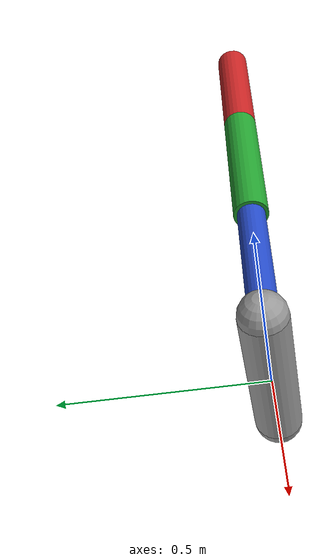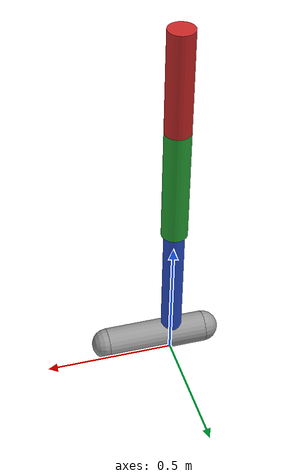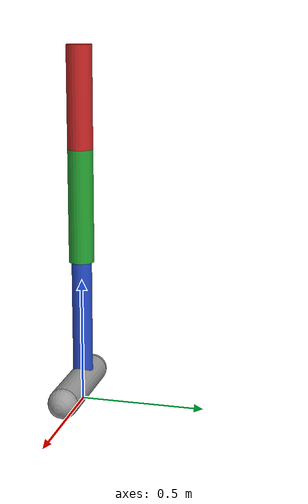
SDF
<sdf version='1.6'>
  <model name='hopper'>
    <link name='mid'>
      <pose frame=''>0 0 0 0 -0 0</pose>
      <inertial>
        <pose frame=''>0 0 0 0 -0 0</pose>
        <mass>0.0001</mass>
        <inertia>
          <ixx>0</ixx>
          <ixy>0</ixy>
          <ixz>0</ixz>
          <iyy>0</iyy>
          <iyz>0</iyz>
          <izz>0</izz>
        </inertia>
      </inertial>
    </link>
    <joint name='world_to_mid' type='prismatic'>
      <child>mid</child>
      <parent>world</parent>
      <axis>
        <xyz>1 0 0</xyz>
        <limit>
          <lower>-1</lower>
          <upper>1000</upper>
          <effort>10000</effort>
          <velocity>1000</velocity>
        </limit>
        <dynamics>
          <spring_reference>0</spring_reference>
          <spring_stiffness>0</spring_stiffness>
        </dynamics>
        <use_parent_model_frame>1</use_parent_model_frame>
      </axis>
    </joint>
    <link name='mid2'>
      <pose frame=''>0 0 1.23 0 -0 0</pose>
      <inertial>
        <pose frame=''>0 0 0 0 -0 0</pose>
        <mass>0.0001</mass>
        <inertia>
          <ixx>0</ixx>
          <ixy>0</ixy>
          <ixz>0</ixz>
          <iyy>0</iyy>
          <iyz>0</iyz>
          <izz>0</izz>
        </inertia>
      </inertial>
    </link>
    <joint name='mid_to_mid2' type='prismatic'>
      <child>mid2</child>
      <parent>mid</parent>
      <axis>
        <xyz>0 0 1</xyz>
        <limit>
          <lower>-10</lower>
          <upper>1000</upper>
          <effort>10000</effort>
          <velocity>1000</velocity>
        </limit>
        <dynamics>
          <spring_reference>0</spring_reference>
          <spring_stiffness>0</spring_stiffness>
        </dynamics>
        <use_parent_model_frame>1</use_parent_model_frame>
      </axis>
    </joint>
    <link name='torso'>
      <pose frame=''>0 0 1.23 0 -0 0</pose>
      <inertial>
        <pose frame=''>0 0 0 0 -0 0</pose>
        <mass>3.14159</mass>
        <inertia>
          <ixx>0.0438514</ixx>
          <ixy>0</ixy>
          <ixz>0</ixz>
          <iyy>0.0438514</iyy>
          <iyz>0</iyz>
          <izz>0.000654498</izz>
        </inertia>
      </inertial>
      <collision name='torso_collision'>
        <pose frame=''>0 0 0 0 -0 0</pose>
        <geometry>
          <cylinder>
            <length>0.4</length>
            <radius>0.05</radius>
          </cylinder>
        </geometry>
        <surface>
          <contact>
            <ode/>
          </contact>
          <friction>
            <ode/>
          </friction>
        </surface>
      </collision>
      <visual name='torso_visual'>
        <pose frame=''>0 0 0 0 -0 0</pose>
        <geometry>
          <cylinder>
            <length>0.4</length>
            <radius>0.05</radius>
          </cylinder>
        </geometry>
        <material>
          <script>
            <name>Gazebo/Red</name>
            <uri>file://media/materials/scripts/gazebo.material</uri>
          </script>
        </material>
      </visual>
      <gravity>1</gravity>
      <velocity_decay/>
    </link>
    <joint name='mid2_to_torso' type='revolute'>
      <child>torso</child>
      <parent>mid2</parent>
      <axis>
        <xyz>0 1 0</xyz>
        <limit>
          <lower>-1e+16</lower>
          <upper>1e+16</upper>
        </limit>
        <dynamics>
          <spring_reference>0</spring_reference>
          <spring_stiffness>0</spring_stiffness>
        </dynamics>
        <use_parent_model_frame>1</use_parent_model_frame>
      </axis>
    </joint>
    <link name='thigh'>
      <pose frame=''>0 0 1.03 0 -0 0</pose>
      <inertial>
        <pose frame=''>0 0 -0.225 0 -0 0</pose>
        <mass>3.53429</mass>
        <inertia>
          <ixx>0.0618501</ixx>
          <ixy>0</ixy>
          <ixz>0</ixz>
          <iyy>0.0618501</iyy>
          <iyz>0</iyz>
          <izz>0.00073631</izz>
        </inertia>
      </inertial>
      <collision name='thigh_collision'>
        <pose frame=''>0 0 -0.225 0 -0 0</pose>
        <geometry>
          <cylinder>
            <length>0.45</length>
            <radius>0.05</radius>
          </cylinder>
        </geometry>
        <surface>
          <contact>
            <ode/>
          </contact>
          <friction>
            <ode/>
          </friction>
        </surface>
      </collision>
      <visual name='thigh_visual'>
        <pose frame=''>0 0 -0.225 0 -0 0</pose>
        <geometry>
          <cylinder>
            <length>0.45</length>
            <radius>0.05</radius>
          </cylinder>
        </geometry>
        <material>
          <script>
            <name>Gazebo/Green</name>
            <uri>file://media/materials/scripts/gazebo.material</uri>
          </script>
        </material>
      </visual>
      <gravity>1</gravity>
      <velocity_decay/>
    </link>
    <joint name='torso_to_thigh' type='revolute'>
      <child>thigh</child>
      <parent>torso</parent>
      <axis>
        <xyz>0 1 0</xyz>
        <limit>
          <lower>0</lower>
          <upper>2.61799</upper>
          <effort>1000</effort>
          <velocity>0.5</velocity>
        </limit>
        <dynamics>
          <spring_reference>0</spring_reference>
          <spring_stiffness>0</spring_stiffness>
        </dynamics>
        <use_parent_model_frame>1</use_parent_model_frame>
      </axis>
    </joint>
    <link name='leg'>
      <pose frame=''>0 0 0.58 0 -0 0</pose>
      <inertial>
        <pose frame=''>0 0 -0.25 0 -0 0</pose>
        <mass>2.51327</mass>
        <inertia>
          <ixx>0.0533651</ixx>
          <ixy>0</ixy>
          <ixz>0</ixz>
          <iyy>0.0533651</iyy>
          <iyz>0</iyz>
          <izz>0.000335103</izz>
        </inertia>
      </inertial>
      <collision name='leg_collision'>
        <pose frame=''>0 0 -0.25 0 -0 0</pose>
        <geometry>
          <cylinder>
            <length>0.5</length>
            <radius>0.04</radius>
          </cylinder>
        </geometry>
        <surface>
          <contact>
            <ode/>
          </contact>
          <friction>
            <ode/>
          </friction>
        </surface>
      </collision>
      <visual name='leg_visual'>
        <pose frame=''>0 0 -0.25 0 -0 0</pose>
        <geometry>
          <cylinder>
            <length>0.5</length>
            <radius>0.04</radius>
          </cylinder>
        </geometry>
        <material>
          <script>
            <name>Gazebo/Blue</name>
            <uri>file://media/materials/scripts/gazebo.material</uri>
          </script>
        </material>
      </visual>
      <gravity>1</gravity>
      <velocity_decay/>
    </link>
    <joint name='thigh_to_leg' type='revolute'>
      <child>leg</child>
      <parent>thigh</parent>
      <axis>
        <xyz>0 1 0</xyz>
        <limit>
          <lower>0</lower>
          <upper>2.61799</upper>
          <effort>1000</effort>
          <velocity>0.5</velocity>
        </limit>
        <dynamics>
          <spring_reference>0</spring_reference>
          <spring_stiffness>0</spring_stiffness>
        </dynamics>
        <use_parent_model_frame>1</use_parent_model_frame>
      </axis>
    </joint>
    <link name='foot'>
      <pose frame=''>0 0 0.08 0 -0 0</pose>
      <inertial>
        <pose frame=''>0.065 0 0 3.14159 1.57079 3.14159</pose>
        <mass>4.41079</mass>
        <inertia>
          <ixx>0.0598765</ixx>
          <ixy>0</ixy>
          <ixz>0</ixz>
          <iyy>0.0598765</iyy>
          <iyz>0</iyz>
          <izz>0.00132324</izz>
        </inertia>
      </inertial>
      <collision name='foot_collision'>
        <pose frame=''>0.065 0 0 3.14159 1.57079 3.14159</pose>
        <geometry>
          <cylinder>
            <length>0.39</length>
            <radius>0.06</radius>
          </cylinder>
        </geometry>
        <surface>
          <contact>
            <ode/>
          </contact>
          <friction>
            <ode>
              <mu>1</mu>
              <mu2>1</mu2>
            </ode>
          </friction>
        </surface>
      </collision>
      <collision name='foot_collision_1'>
        <pose frame=''>0.26 0 0 3.14159 1.57079 3.14159</pose>
        <geometry>
          <sphere>
            <radius>0.06</radius>
          </sphere>
        </geometry>
        <surface>
          <contact>
            <ode/>
          </contact>
          <friction>
            <ode>
              <mu>1</mu>
              <mu2>1</mu2>
            </ode>
          </friction>
        </surface>
      </collision>
      <collision name='foot_collision_2'>
        <pose frame=''>-0.13 0 0 3.14159 1.57079 3.14159</pose>
        <geometry>
          <sphere>
            <radius>0.06</radius>
          </sphere>
        </geometry>
        <surface>
          <contact>
            <ode/>
          </contact>
          <friction>
            <ode>
              <mu>1</mu>
              <mu2>1</mu2>
            </ode>
          </friction>
        </surface>
      </collision>
      <visual name='foot_visual'>
        <pose frame=''>0.065 0 0 3.14159 1.57079 3.14159</pose>
        <geometry>
          <cylinder>
            <length>0.39</length>
            <radius>0.06</radius>
          </cylinder>
        </geometry>
        <material>
          <script>
            <name>Gazebo/Grey</name>
            <uri>file://media/materials/scripts/gazebo.material</uri>
          </script>
        </material>
      </visual>
      <visual name='foot_visual_1'>
        <pose frame=''>0.26 0 0 3.14159 1.57079 3.14159</pose>
        <geometry>
          <sphere>
            <radius>0.06</radius>
          </sphere>
        </geometry>
        <material>
          <script>
            <name>Gazebo/Grey</name>
            <uri>file://media/materials/scripts/gazebo.material</uri>
          </script>
        </material>
      </visual>
      <visual name='foot_visual_2'>
        <pose frame=''>-0.13 0 0 3.14159 1.57079 3.14159</pose>
        <geometry>
          <sphere>
            <radius>0.06</radius>
          </sphere>
        </geometry>
        <material>
          <script>
            <name>Gazebo/Grey</name>
            <uri>file://media/materials/scripts/gazebo.material</uri>
          </script>
        </material>
      </visual>
      <gravity>1</gravity>
      <velocity_decay/>
    </link>
    <joint name='leg_to_foot' type='revolute'>
      <child>foot</child>
      <parent>leg</parent>
      <axis>
        <xyz>0 1 0</xyz>
        <limit>
          <lower>-0.785397</lower>
          <upper>0.785397</upper>
          <effort>1000</effort>
          <velocity>0.5</velocity>
        </limit>
        <dynamics>
          <spring_reference>0</spring_reference>
          <spring_stiffness>0</spring_stiffness>
        </dynamics>
        <use_parent_model_frame>1</use_parent_model_frame>
      </axis>
    </joint>
  </model>
</sdf>
